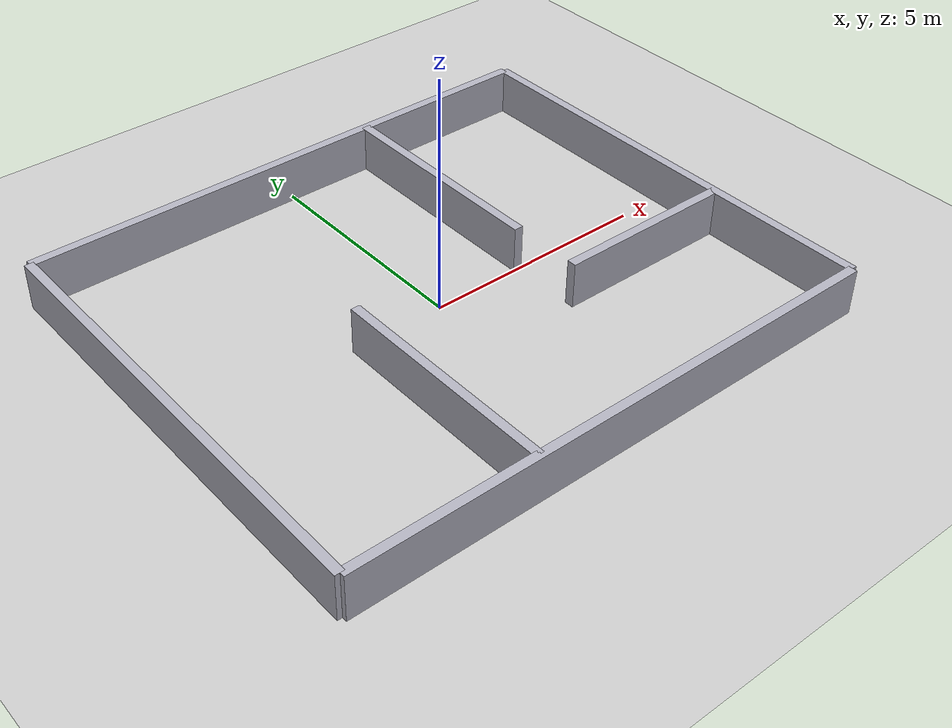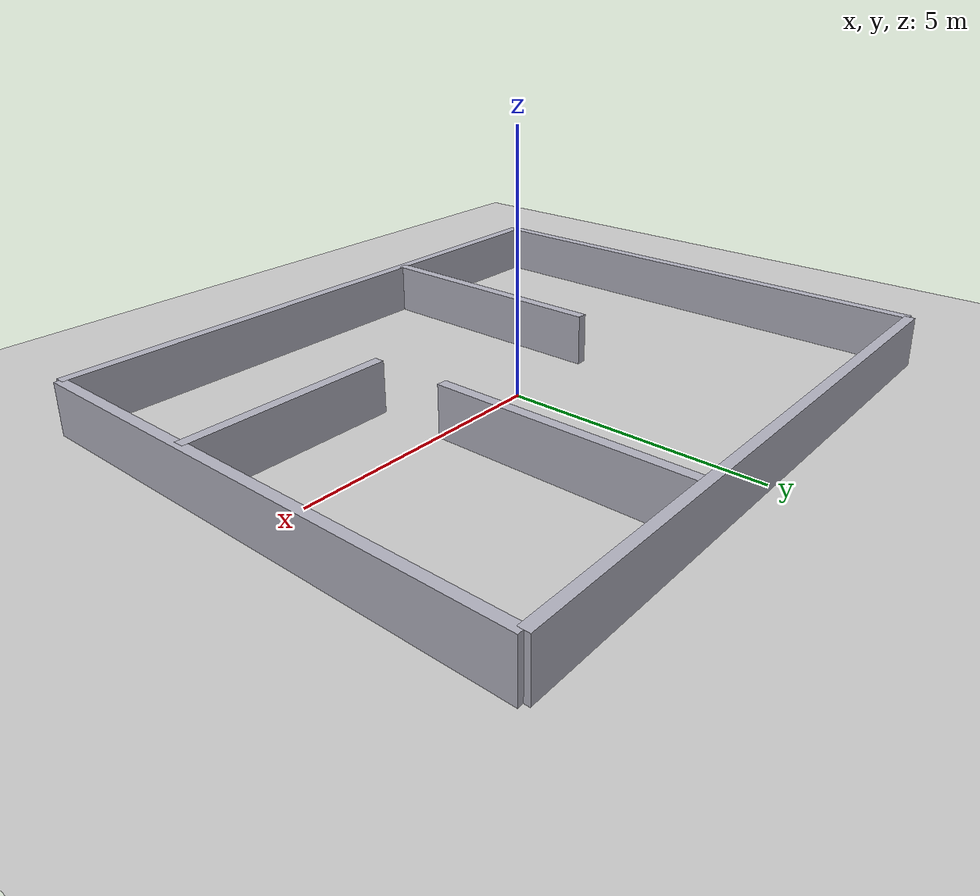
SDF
<?xml version="1.0" ?>
<sdf version="1.9">

  <world name="search_environment">

    <!-- Gazebo Core Systems -->

    <plugin
        filename="gz-sim-physics-system"
        name="gz::sim::systems::Physics">
    </plugin>

    <plugin
        filename="gz-sim-user-commands-system"
        name="gz::sim::systems::UserCommands">
    </plugin>

    <plugin
        filename="gz-sim-scene-broadcaster-system"
        name="gz::sim::systems::SceneBroadcaster">
    </plugin>

    <plugin
        filename="gz-sim-sensors-system"
        name="gz::sim::systems::Sensors">
    </plugin>

    <plugin
        filename="gz-sim-imu-system"
        name="gz::sim::systems::Imu">
    </plugin>

    <!-- Physics -->
    <physics name="1ms" type="ode">
      <max_step_size>0.001</max_step_size>
      <real_time_factor>1</real_time_factor>
      <real_time_update_rate>1000</real_time_update_rate>
    </physics>

    <!-- Ground -->
    <model name="ground">

      <static>true</static>

      <link name="ground_link">

        <collision name="ground_collision">
          <geometry>
            <plane>
              <normal>0 0 1</normal>
              <size>50 50</size>
            </plane>
          </geometry>
        </collision>

        <visual name="ground_visual">
          <geometry>
            <plane>
              <normal>0 0 1</normal>
              <size>50 50</size>
            </plane>
          </geometry>
        </visual>

      </link>

    </model>

    <!-- Search Building -->

    <model name="search_building">

      <static>true</static>

      <!-- Outer Wall: North -->
      <link name="north_wall">
        <pose>0 5 0.5 0 0 0</pose>

        <collision name="collision">
          <geometry>
            <box>
              <size>12 0.2 1</size>
            </box>
          </geometry>
        </collision>

        <visual name="visual">
          <geometry>
            <box>
              <size>12 0.2 1</size>
            </box>
          </geometry>
          <material>
              <ambient>0.7 0.7 0.75 1</ambient>
              <diffuse>0.7 0.7 0.75 1</diffuse>
              <specular>0.2 0.2 0.2 1</specular>
          </material>
        </visual>
      </link>

      <!-- Outer Wall: South -->
      <link name="south_wall">
        <pose>0 -5 0.5 0 0 0</pose>

        <collision name="collision">
          <geometry>
            <box>
              <size>12 0.2 1</size>
            </box>
          </geometry>
        </collision>

        <visual name="visual">
          <geometry>
            <box>
              <size>12 0.2 1</size>
            </box>
          </geometry>
          <material>
              <ambient>0.7 0.7 0.75 1</ambient>
              <diffuse>0.7 0.7 0.75 1</diffuse>
              <specular>0.2 0.2 0.2 1</specular>
          </material>
        </visual>
      </link>

      <!-- Outer Wall: East -->
      <link name="east_wall">
        <pose>6 0 0.5 0 0 0</pose>

        <collision name="collision">
          <geometry>
            <box>
              <size>0.2 10 1</size>
            </box>
          </geometry>
        </collision>

        <visual name="visual">
          <geometry>
            <box>
              <size>0.2 10 1</size>
            </box>
          </geometry>
          <material>
              <ambient>0.7 0.7 0.75 1</ambient>
              <diffuse>0.7 0.7 0.75 1</diffuse>
              <specular>0.2 0.2 0.2 1</specular>
          </material>
        </visual>
      </link>

      <!-- Outer Wall: West -->
      <link name="west_wall">
        <pose>-6 0 0.5 0 0 0</pose>

        <collision name="collision">
          <geometry>
            <box>
              <size>0.2 10 1</size>
            </box>
          </geometry>
        </collision>

        <visual name="visual">
          <geometry>
            <box>
              <size>0.2 10 1</size>
            </box>
          </geometry>
          <material>
              <ambient>0.7 0.7 0.75 1</ambient>
              <diffuse>0.7 0.7 0.75 1</diffuse>
              <specular>0.2 0.2 0.2 1</specular>
          </material>
        </visual>
      </link>

      <!-- Interior Wall 1 -->
      <link name="interior_wall_1">
        <pose>2 2.5 0.5 0 0 0</pose>

        <collision name="collision">
          <geometry>
            <box>
              <size>0.2 5 1</size>
            </box>
          </geometry>
        </collision>

        <visual name="visual">
          <geometry>
            <box>
              <size>0.2 5 1</size>
            </box>
          </geometry>
          <material>
              <ambient>0.7 0.7 0.75 1</ambient>
              <diffuse>0.7 0.7 0.75 1</diffuse>
              <specular>0.2 0.2 0.2 1</specular>
          </material>
        </visual>
      </link>

      <!-- Interior Wall 2 -->
      <link name="interior_wall_2">
        <pose>-2 -2.5 0.5 0 0 0</pose>

        <collision name="collision">
          <geometry>
            <box>
              <size>0.2 5 1</size>
            </box>
          </geometry>
        </collision>

        <visual name="visual">
          <geometry>
            <box>
              <size>0.2 5 1</size>
            </box>
          </geometry>
          <material>
              <ambient>0.7 0.7 0.75 1</ambient>
              <diffuse>0.7 0.7 0.75 1</diffuse>
              <specular>0.2 0.2 0.2 1</specular>
          </material>
        </visual>
      </link>

      <!-- Interior Wall 3 -->
      <link name="interior_wall_3">
        <pose>4 -1.5 0.5 0 0 0</pose>

        <collision name="collision">
          <geometry>
            <box>
              <size>4 0.2 1</size>
            </box>
          </geometry>
        </collision>

        <visual name="visual">
          <geometry>
            <box>
              <size>4 0.2 1</size>
            </box>
          </geometry>
          <material>
              <ambient>0.7 0.7 0.75 1</ambient>
              <diffuse>0.7 0.7 0.75 1</diffuse>
              <specular>0.2 0.2 0.2 1</specular>
          </material>
        </visual>
      </link>

    </model>

    <!-- Sun -->
    <light name="sun" type="directional">
      <cast_shadows>true</cast_shadows>
      <pose>0 0 10 0 0 0</pose>
      <diffuse>1 1 1 1</diffuse>
      <specular>0.2 0.2 0.2 1</specular>
      <direction>-0.5 0.1 -0.9</direction>
    </light>

  </world>

</sdf>
